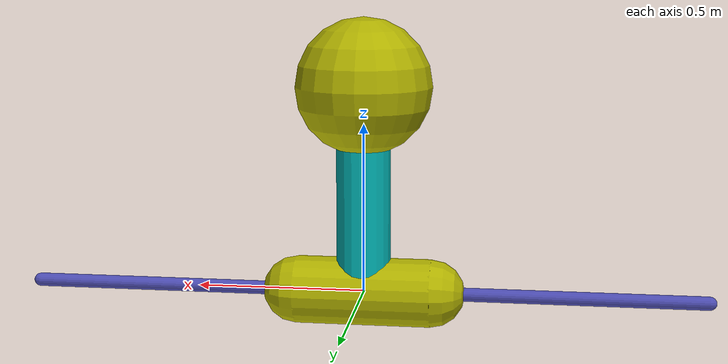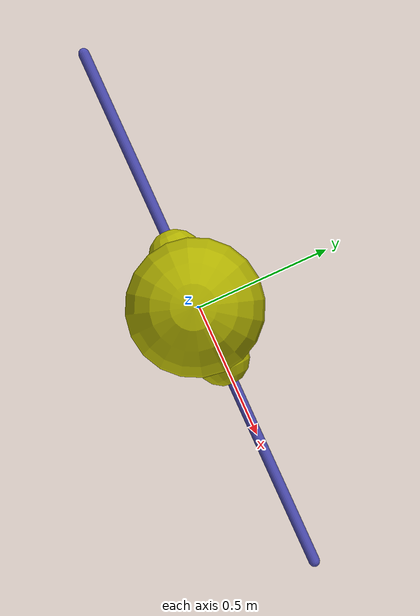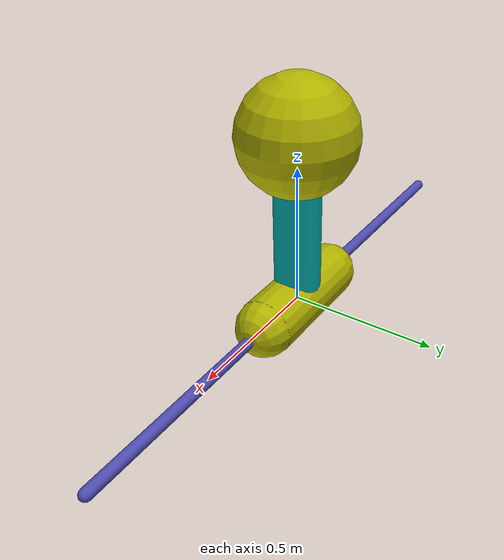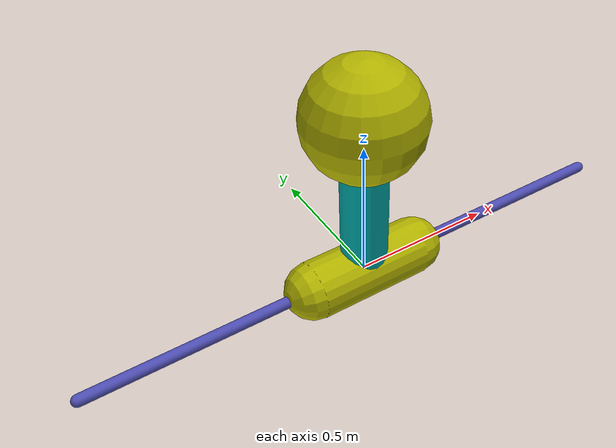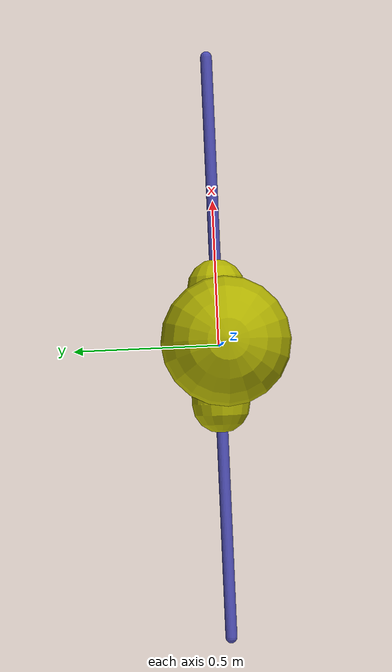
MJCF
<mujoco model="inverted_pendulum_mass">
	<compiler inertiafromgeom="true"/>
	<default>
		<joint armature="0" damping="1" limited="true"/>
		<geom contype="0" friction="1 0.1 0.1" rgba="0.7 0.7 0 1"/>
		<tendon/>
		<motor ctrlrange="-3 3"/>
	</default>
	<option gravity="0 0 -9.81" integrator="RK4" timestep="0.02"/>
	<size nstack="3000"/>
	<worldbody>
		<!--geom name="ground" type="plane" pos="0 0 0" /-->
		<geom name="rail" pos="0 0 0" quat="0.707 0 0.707 0" rgba="0.3 0.3 0.7 1" size="0.02 1" type="capsule"/>
		<body name="cart" pos="0 0 0">
      <inertial pos="0 0 0" mass="0.7" diaginertia="1 1 1"/>
			<joint axis="1 0 0" limited="true" name="slider" pos="0 0 0" range="-1 1" frictionloss="0" type="slide"/>
			<!--geom name="cart" pos="0 0 0" quat="0.707 0 0.707 0" size="0.1 0.1" type="capsule"/-->
			<geom name="cart" pos="0 0 0" quat="0.707 0 0.707 0" size="0.1 0.2" type="capsule"/>
			<body name="pole" pos="0 0 0">
				<inertial pos="0 0 0" mass="1.25" diaginertia="1 1 1"/>
				<joint axis="0 1 0" name="hinge" pos="0 0 0" range="-90 90" frictionloss="0" type="hinge"/>
				<geom fromto="0 0 0 0.001 0 0.6" name="cpole" rgba="0 0.7 0.7 1" size="0.08 0.3" type="capsule"/>
				<body name="ball" pos="0 0 0.61">
					<inertial pos="0 0 0" mass="0.9" diaginertia="166.667 166.667 166.667"/>
					<geom contype="0" name="ball" pos="0 0 0" size="0.2" type="sphere"/>
				</body>
			</body>
		</body>
	</worldbody>
	<actuator>
		<motor gear="100" joint="slider" name="slide"/>
	</actuator>
</mujoco>
